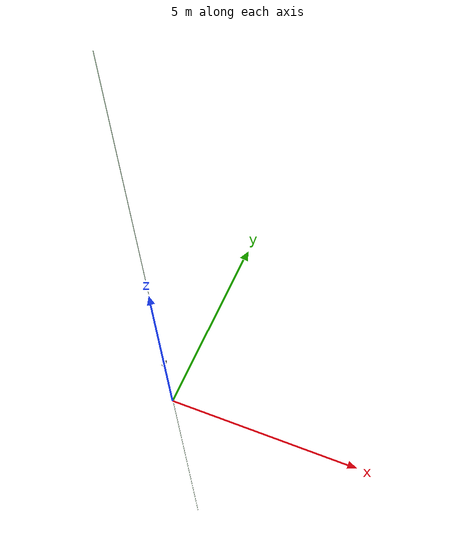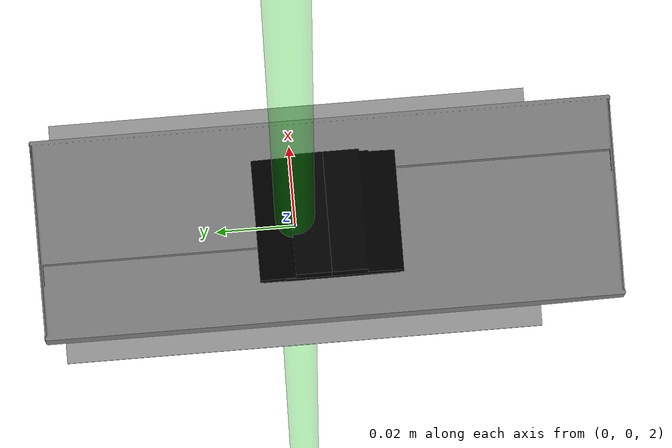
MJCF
<mujoco model="wsg50_hand">
    <asset>
        <mesh name="WSG50_110" file="meshes/wsg_50/WSG50_110.stl" />
        <mesh name="GUIDE_WSG50_110" file="meshes/wsg_50/GUIDE_WSG50_110.stl" scale="0.001 0.001 0.001" />
        <mesh name="WSG-DSA" file="meshes/wsg_50/WSG-DSA.stl" scale="0.001 0.001 0.001" />
    </asset>
    <actuator>
        <position ctrllimited="true" ctrlrange="-0.047 0" joint="finger_joint1" kp="1000" name="finger_j1" forcelimited="true" forcerange="-20 20"/>
        <position ctrllimited="true" ctrlrange="0 0.047" joint="finger_joint2" kp="1000" name="finger_j2" forcelimited="true" forcerange="-20 20"/>
    </actuator>
    <worldbody>
        <body name="lwr_arm_1_link" pos="0 0 0.9242">
            <body name="lwr_arm_2_link" pos="0 0 0.2" quat="0.707107 -0.707107 0 0">
                <body name="lwr_arm_3_link" pos="0 -0.2 0" quat="0.707107 0.707107 0 0">
                    <body name="lwr_arm_4_link" pos="0 0 0.2" quat="0.707107 0.707107 0 0">
                        <body name="lwr_arm_5_link" pos="0 0.2 0" quat="0.707107 -0.707107 0 0">
                            <body name="lwr_arm_6_link" pos="0 0 0.19" quat="0.707107 -0.707107 0 0">
                                <body name="lwr_arm_7_link" pos="0 -0.078 0" quat="0.707107 0.707107 0 0">
                                    <site name="ft_frame" pos="0 0 0" size="0.01 0.01 0.01" rgba="1 0 0 1" type="sphere" group="1" />

                                    <!-- This site was added for visualization. -->
                                    <body name="eef" pos="0 0 -0.27" quat="0 1 0 0">
                                        <site name="grip_site" pos="0 0 0" size="0.01 0.01 0.01" rgba="1 0 0 0.5" type="sphere" group="1"/>
                                        <site name="ee_x" pos="0.1 0 0" size="0.005 .1"  quat="0.707105  0 0.707108 0 " rgba="1 0 0 0" type="cylinder" group="1"/>
                                        <site name="ee_y" pos="0 0.1 0" size="0.005 .1" quat="0.707105 0.707108 0 0" rgba="0 1 0 0" type="cylinder" group="1"/>
                                        <site name="ee_z" pos="0 0 0.1" size="0.005 .1" quat="1 0 0 0" rgba="0 0 1 0" type="cylinder" group="1"/>
                                        <!-- This site was added for visualization. -->
                                        <site name="grip_site_cylinder" pos="0 0 0" size="0.005 10" rgba="0 1 0 0.3" type="cylinder" group="1"/>
                                    </body>
                                    <geom size="0.06 0.03 0.0025" pos="0 0 0.0125" quat="0.707107 0 0 -0.707107" type="box" rgba="0.6 0.6 0.6 1" />
                                    <geom pos="9.1e-05 -0.008086 0.015" quat="0.707107 0 0 -0.707107" type="mesh" mesh="WSG50_110" />
                                    <body name="gripper_left" pos="9.1e-05 -0.008086 0.015" quat="0.707107 0 0 -0.707107">
                                        <inertial pos="-0.0045 0 0.0408" quat="0.998492 0 -0.0548974 0" mass="0.2" diaginertia="2.00034 2.00034 2" />
                                        <joint name="finger_joint1" pos="0 0 0" axis="1 0 0" type="slide" limited="true" range="-0.055 -0.0027" damping="100" frictionloss="100" />
                                        <geom type="mesh" rgba="0 0 0 1" name = 'left_finger_collision' friction="1 0.005 1" mesh="GUIDE_WSG50_110" />
                                        <geom pos="-0.009 0 0.0816" type="mesh" rgba="0 0 0 1" name ='left_finger_pad' mesh="WSG-DSA" />
                                    </body>
                                    <body name="gripper_right" pos="9.1e-05 -0.008086 0.015" quat="0.707107 0 0 0.707107">
                                        <inertial pos="-0.0045 0 0.0408" quat="0.998492 0 -0.0548974 0" mass="0.2" diaginertia="2.00034 2.00034 2" />
                                        <joint name="finger_joint2" pos="0 0 0" axis="-1 0 0" type="slide" limited="true" range="0.0027 0.055" damping="100" frictionloss="100" />
                                        <geom type="mesh" rgba="0 0 0 1" name = 'right_finger_collision' friction="1 0.005 1" mesh="GUIDE_WSG50_110" />
                                        <geom pos="-0.009 0 0.0816" type="mesh" rgba="0 0 0 1" name ='right_finger_pad' mesh="WSG-DSA" />
                                    </body>
                                </body>
                            </body>
                        </body>
                    </body>
                </body>
            </body>
        </body>
    </worldbody>
</mujoco>
